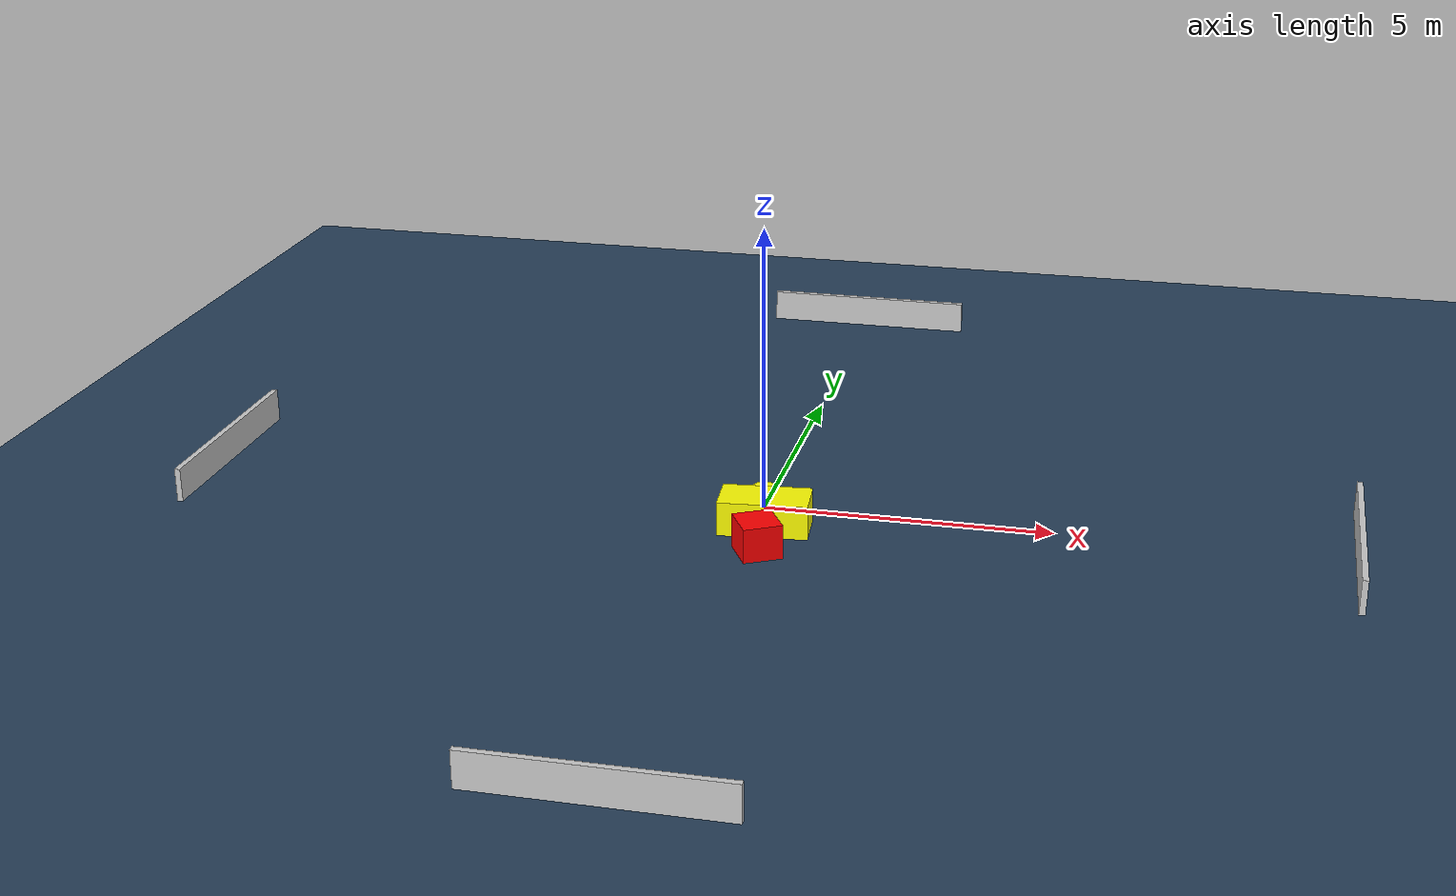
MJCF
<?xml version="1.0" ?>
<mujoco model="generated_environment">
  <option timestep="0.01" integrator="RK4" cone="elliptic"/>
  <default>
    <geom density="1"/>
  </default>
  <asset>
    <texture builtin="gradient" height="3072" name="skybox" rgb1="0.3 0.5 0.7" rgb2="0 0 0" type="skybox" width="512"/>
    <texture builtin="checker" height="300" name="groundplane" rgb1="0.2 0.3 0.4" rgb2="0.1 0.2 0.3" type="2d" width="300"/>
    <material name="groundplane" reflectance="0.2" texrepeat="5 5" texture="groundplane"/>
  </asset>
  <worldbody>
    <light dir="0 0 -1" directional="true" pos="0 0 1.5"/>
    <geom condim="3" friction="0.5 0.005 0.001" material="groundplane" name="floor" pos="0 0 0" size="0 0 0.05" type="plane"/>
    <body name="walls">
      <geom name="wall_1" condim="4" pos="-10.0 0.0 0.3" rgba="0.800000011920929 0.800000011920929 0.800000011920929 1.0" size="0.05 2.0 0.3" type="box"/>
      <geom name="wall_2" condim="4" pos="10.0 0.0 0.3" rgba="0.800000011920929 0.800000011920929 0.800000011920929 1.0" size="0.05 2.0 0.3" type="box"/>
      <geom name="wall_3" condim="4" pos="0.0 -10.0 0.3" rgba="0.800000011920929 0.800000011920929 0.800000011920929 1.0" size="2.0 0.05 0.3" type="box"/>
      <geom name="wall_4" condim="4" pos="0.0 10.0 0.3" rgba="0.800000011920929 0.800000011920929 0.800000011920929 1.0" size="2.0 0.05 0.3" type="box"/>
    </body>
    <body name="robot">
      <joint name="joint_x" type="slide" pos="0 0 0" axis="1 0 0"/>
      <joint name="joint_y" type="slide" pos="0 0 0" axis="0 1 0"/>
      <geom name="robot" type="cylinder" pos="0.0 0.0 0.2" size="0.2 0.2 0.0" mass="5.0" friction="1.0 0.005 0.0001" condim="4" rgba="1.0 1.0 0.0 1.0"/>
    </body>
    <body name="obstacle_1_movable">
      <geom name="obstacle_1_movable" condim="4" pos="0.20147442787537131 -0.8465504771073722 0.3" euler="0 0 185.40287180217422" friction="0.0 0.005 0.001" rgba="1.0 1.0 0.0 1.0" size="0.7696010864036897 0.40861870245610277 0.3" type="box" mass="0.1"/>
      <joint type="free"/>
    </body>
    <body name="obstacle_2_static">
      <geom name="obstacle_2_static" condim="4" pos="0.29601610556417196 -1.8452581666784131 0.3" euler="0 0 29.353030384915876" friction="0.0 0.005 0.001" rgba="1.0 0.0 0.0 1.0" size="0.3361640969957185 0.3499267299668833 0.3" type="box"/>
    </body>
  </worldbody>
  <actuator>
    <motor name="actuator_x" joint="joint_x" gear="1" ctrlrange="-1 1"/>
    <motor name="actuator_y" joint="joint_y" gear="1" ctrlrange="-1 1"/>
  </actuator>
</mujoco>
